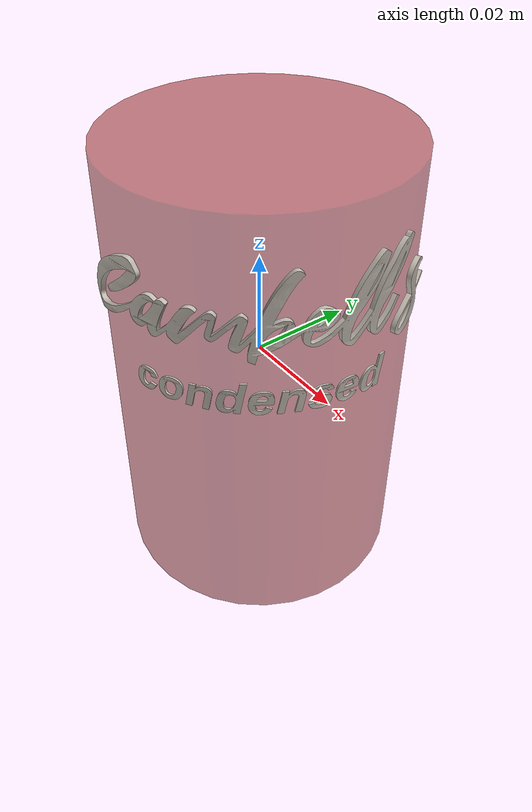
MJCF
<?xml version='1.0' encoding='utf-8'?>
<mujoco model="more_canned_food_2">
  <asset>
    <mesh file="visual/model_normalized_0.obj" name="model_normalized_0_vis" scale="0.08549999999999998 0.08549999999999998 0.08549999999999998" refquat="1.0 0.0 0.0 0.0" />
    <texture type="2d" name="image0" file="visual/image0.png" />
    <material name="07_-_Default" texture="image0" specular="0.5" shininess="0.768579204" />
    <mesh file="collision/collision_mesh_collision_0.obj" name="canned_collision_mesh_0" scale="0.08549999999999998 0.08549999999999998 0.08549999999999998" refquat="1.0 0.0 0.0 0.0" />
  </asset>
  <default>
    <default class="region">
      <geom group="1" conaffinity="0" contype="0" rgba="0 1 0 0" mass="0" />
    </default>
    <default class="collision">
      <geom group="0" rgba="0.5 0 0 0.5" density="1448.122456315" />
    </default>
  </default>
  <worldbody>
    <body>
      <body name="object">
        <geom solimp="0.998 0.998 0.001" solref="0.001 1" density="144.812245632" friction="0.95 0.3 0.1" type="mesh" mesh="model_normalized_0_vis" conaffinity="0" contype="0" group="1" material="07_-_Default" />
        <geom class="region" name="reg_bbox" type="box" pos="0.0 0.0 0.0" size="0.02700676700999999 0.027006741359999992 0.04274999999999999" />
        <geom mesh="canned_collision_mesh_0" type="mesh" class="collision" />
      </body>
    </body>
  </worldbody>
</mujoco>
